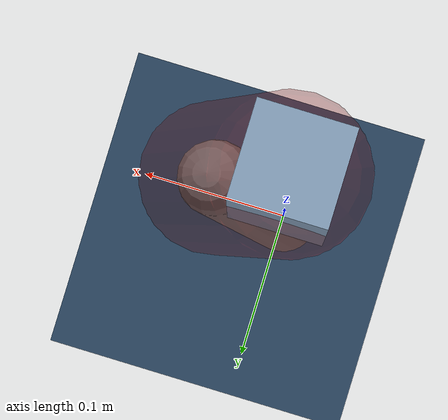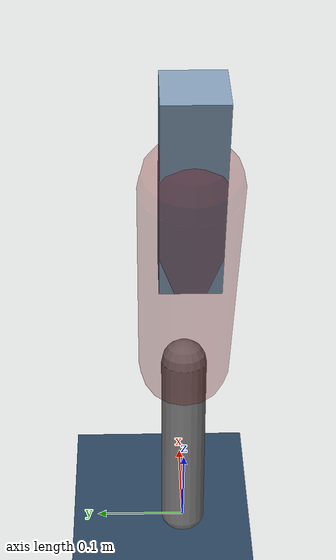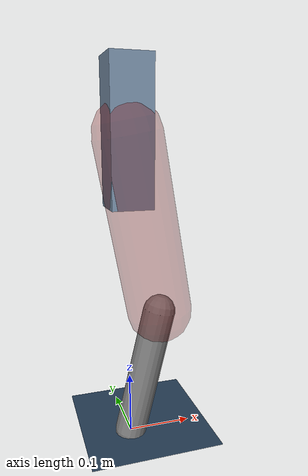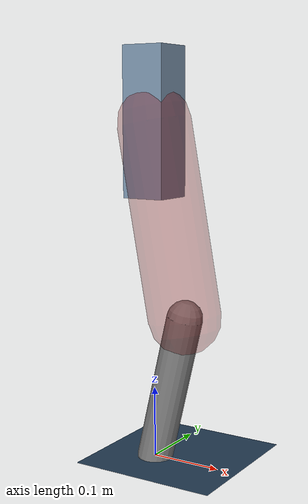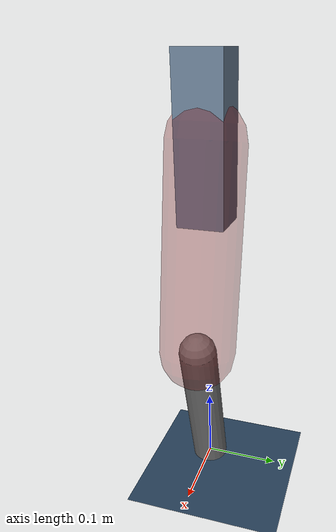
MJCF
<mujoco model="Hopper2D">
	<compiler inertiafromgeom="true" angle="radian" />
	<option timestep="0.001" integrator="implicit" cone="elliptic" solver="Newton" tolerance="1e-10" />

	<default>
		<geom contype="1" conaffinity="1" condim="3" friction="2 0.005 0.0001" solref="0.005 1" />
		<joint limited="true" damping="0.1" />
	</default>

	<asset>
		<texture name="skybox" type="skybox" builtin="gradient" rgb1=".4 .6 .8" rgb2="0 0 0" width="800" height="800" />
		<texture name="grid" type="2d" builtin="checker" rgb1=".1 .2 .3" rgb2=".2 .3 .4" width="300" height="300" mark="edge" markrgb=".2 .3 .4" />
		<material name="ground" texture="grid" texrepeat="1 1" texuniform="true" reflectance="0.1" />
		<material name="leg" rgba="0.5 0.6 0.7 1" />
	</asset>

	<worldbody>

		<geom name="floor" type="plane" size="5 5 0.25" material="ground" />

		<light directional="false" diffuse="0.8 0.8 0.8" specular="0.3 0.3 0.3" pos="0 0 2" dir="0 0 -1" />
		<light mode="targetbodycom" target="base" directional="false" diffuse="0.8 0.8 0.8" specular="0.3 0.3 0.3" pos="0 0 2" dir="0 0 -1" />

		<camera name="fixed" pos="0 -2 1" xyaxes="1 0 0 0 0 1" />
		<camera name="tracking" mode="trackcom" pos="0 -3 1" />

		<body name="root" pos="0 0 0.46681538671923695">
			<joint name="slide_x" type="slide" axis="1 0 0" range="-100 100" />
			<joint name="slide_z" type="slide" axis="0 0 1" range="0 10" />

			<body name="base" pos="0 0 0">
				<geom name="torso" type="box" size="0.03 0.03 0.1" mass="2.553" material="leg" />

				<body name="link1" pos="0 0 0" euler="0 1.38858497223368 0">
					<joint type="hinge" axis="0 -1 0" pos="0 0 0" name="hinge1" limited="true" range="-3.14 3.14" stiffness="0" damping="0.1" />
					<geom name="thigh" type="capsule" fromto="0 0 0 0.26614214938529873 0 0" size="0.05" rgba="0.5 0 0 0.3" mass="0.8984838033403065" />

					<body name="link2" pos="0.26614214938529873 0 0" euler="0 0.41317410188338094 0">
						<joint type="hinge" axis="0 -1 0" pos="0 0 0" name="hinge2" limited="true" range="-3.14 3.14" stiffness="0" damping="0.1" />
						<geom name="shank" type="capsule" fromto="0 0 0 0.2106732373339382 0 0" size="0.025" mass="0.40983858986715055" />

					</body>
				</body>
			</body>
		</body>
	</worldbody>

	<actuator>
		<motor name="torque1" joint="hinge1" ctrlrange="-67.37789467617239 67.37789467617239" ctrllimited="true" gear="1" />
		<motor name="torque2" joint="hinge2" ctrlrange="-116.52595825343538 116.52595825343538" ctrllimited="true" gear="1" />
	</actuator>
</mujoco>
